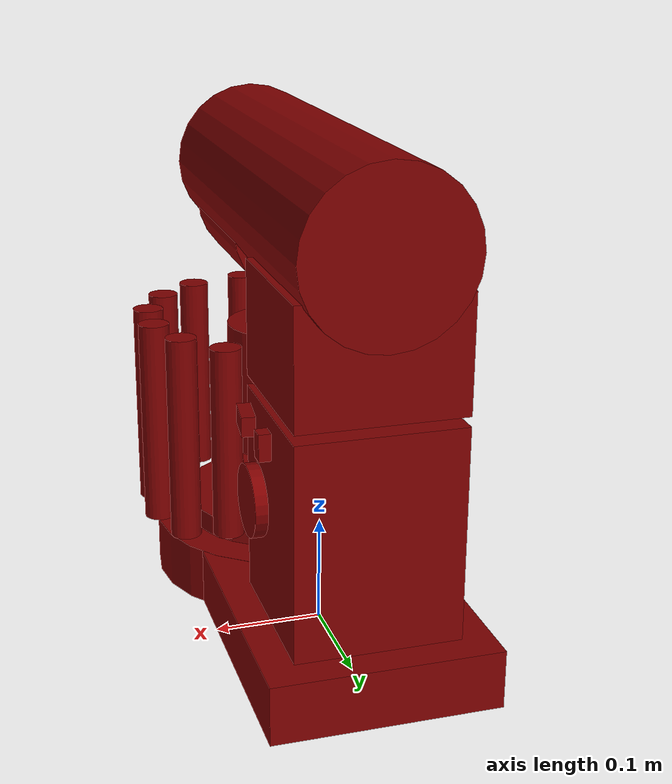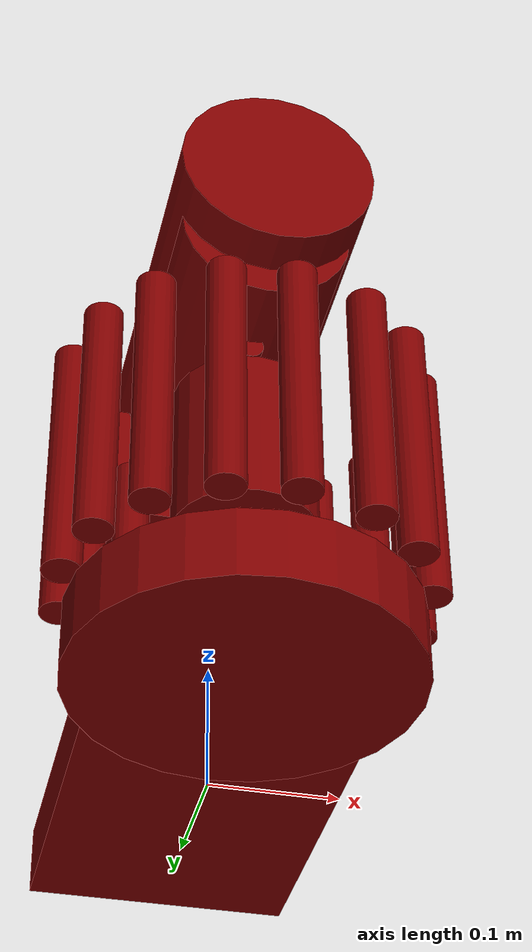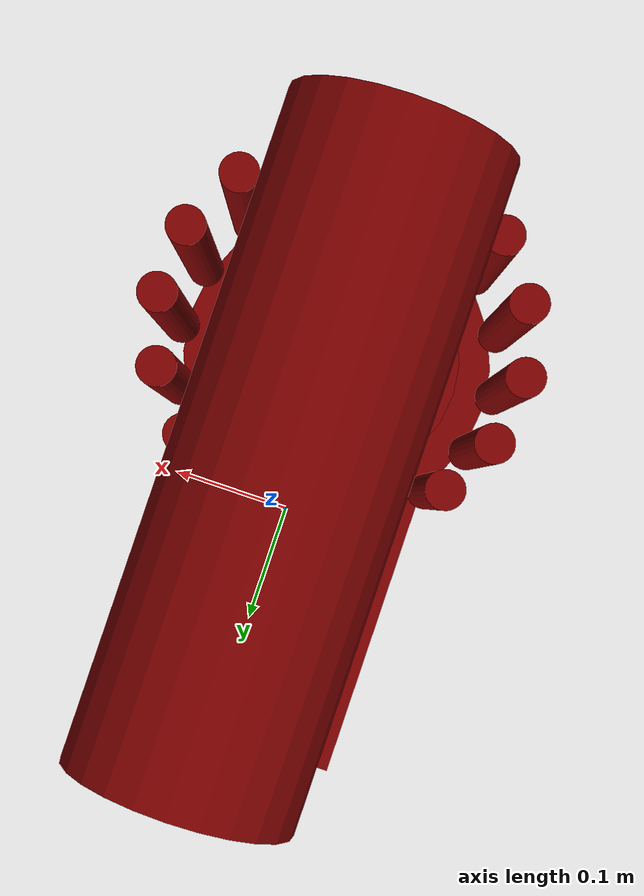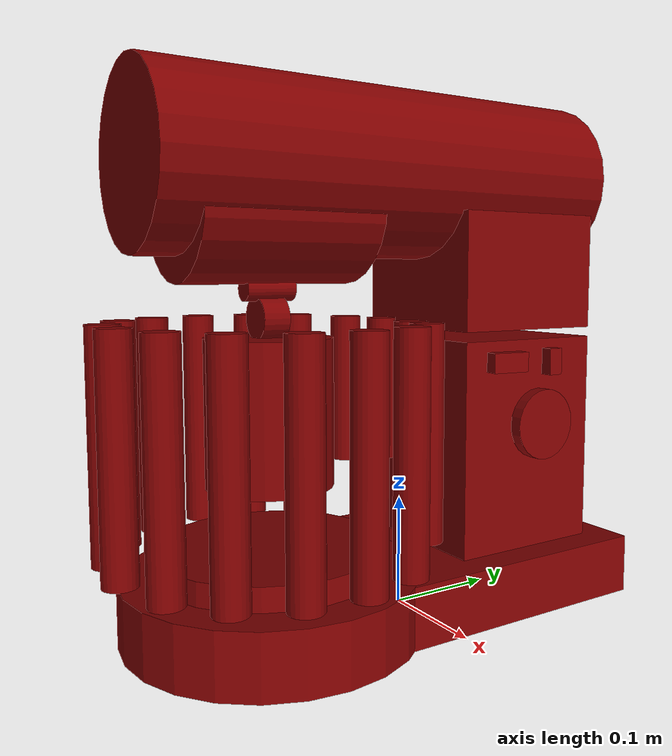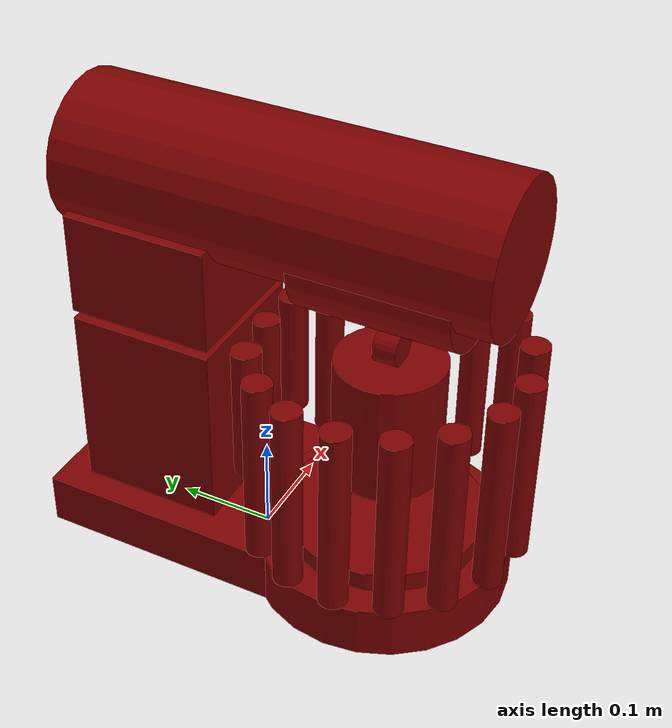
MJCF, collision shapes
<mujoco model="model">
  <compiler angle="radian"/>
  <asset>
    <mesh file="visuals/FoodMixer001_Lid001.obj" name="FoodMixer001_Lid_vis"/>
    <mesh file="visuals/FoodMixer001_Knob001.obj" name="FoodMixer001_Knob001_vis"/>
    <mesh file="visuals/FoodMixer001_Container001.obj" name="FoodMixer001_Container_vis"/>
    <mesh file="visuals/FoodMixer001_Rotate001.obj" name="FoodMixer001_Rotate_vis"/>
    <mesh file="visuals/FoodMixer001_Knob002.obj" name="FoodMixer001_Knob002_vis"/>
    <mesh file="visuals/FoodMixer001_Button001.obj" name="FoodMixer001_Button_vis"/>
    <mesh file="visuals/FoodMixer001_Body001.obj" name="FoodMixer001_Body_vis"/>
    <texture file="visuals/T_FoodMixer001_BC001.png" name="T_FoodMixer001_BC" type="2d"/>
    <material name="material" rgba="1 1 1 1" texture="T_FoodMixer001_BC"/>
  </asset>
  <default>
    <default class="visual">
      <geom conaffinity="0" contype="0" group="1" type="mesh"/>
    </default>
    <default class="collision">
      <geom group="0" rgba="0.5 0 0 0.5"/>
    </default>
    <default class="region">
      <geom group="1" conaffinity="0" contype="0" rgba="0 1 0 0"/>
    </default>
  </default>
  <worldbody>
    <body>
      <body name="object">
        <geom mesh="FoodMixer001_Body_vis" type="mesh" solimp="0.998 0.998 0.001" solref="0.001 1" density="100" friction="0.95 0.3 0.1" class="visual" material="material"/>
        <geom class="collision" type="box" pos="-0.0015425285091623664 0.001505821943283081 0.02924015372991562" size="0.1947782039642334 0.10231997817754745 0.02692364901304245" quat="0.7071067690849304 0.0 -0.0 -0.7071067690849304"/>
        <geom class="collision" type="cylinder" pos="-0.0015425384044647217 -0.13211378455162048 0.02916795015335083" size="0.1292576938867569 0.02709665149450302" quat="0.7071067690849304 0.0 -0.0 -0.7071067690849304"/>
        <geom class="collision" type="box" pos="-0.0015425384044647217 0.09347827732563019 0.15110759437084198" size="0.07416939735412598 0.07416940480470657 0.09849457442760468" quat="0.7071067690849304 0.0 -0.0 -0.7071067690849304"/>
        <body name="FoodMixer001_Button">
          <joint axis="-1 0 0" pos="0.07402005046606064 0.11086869984865189 0.22917325794696808" limited="true" name="FoodMixer001_Button_joint" range="0.0 0.002" type="slide" damping="2" frictionloss="2" armature=".01"/>
          <geom mesh="FoodMixer001_Button_vis" type="mesh" solimp="0.998 0.998 0.001" solref="0.001 1" density="100" friction="0.95 0.3 0.1" class="visual" material="material"/>
          <geom class="collision" type="box" pos="0.08268392086029053 0.11086530983448029 0.22953137755393982" size="0.011952424421906471 0.005380550865083933 0.007075777743011713" quat="0.5000000596046448 -0.5 -0.5 -0.4999999701976776"/>
        </body>
        <body name="FoodMixer001_Container">
          <joint axis="0 0 1" pos="-0.001966622890904546 -0.1334008127450943 0.05936579406261444" limited="true" name="FoodMixer001_Container_joint" range="0.0 0.02" type="slide" damping="2" frictionloss="2" armature=".01"/>
          <geom mesh="FoodMixer001_Container_vis" type="mesh" solimp="0.998 0.998 0.001" solref="0.001 1" density="100" friction="0.95 0.3 0.1" class="visual" material="material"/>
          <geom class="collision" type="cylinder" pos="-0.001966625452041626 -0.1334008127450943 0.0681685134768486" size="0.10042183101177216 0.010085941292345524" quat="0.7071067690849304 0.0 -0.0 -0.7071067690849304"/>
          <geom class="collision" type="cylinder" pos="0.06330908834934235 -0.24866095185279846 0.1696876585483551" size="0.014615054242312908 0.09909340739250183" quat="0.9230777621269226 0.0 -0.0 -0.38461342453956604"/>
          <geom class="collision" type="cylinder" pos="0.1019730418920517 -0.2155127227306366 0.1696876585483551" size="0.014615053310990334 0.09909340739250183" quat="0.9797985553741455 0.0 -0.0 -0.19998711347579956"/>
          <geom class="collision" type="cylinder" pos="0.12576672434806824 -0.1684723198413849 0.1696876585483551" size="0.014615049585700035 0.09909340739250183" quat="0.999999463558197 0.0 -0.0 -0.0010215041693300009"/>
          <geom class="collision" type="cylinder" pos="0.12955842912197113 -0.1176852136850357 0.1696876585483551" size="0.014615051448345184 0.09909340739250183" quat="0.9815438389778137 0.0 0.0 0.19123737514019012"/>
          <geom class="collision" type="cylinder" pos="0.11336428672075272 -0.06825023144483566 0.1696876585483551" size="0.014615047723054886 0.09909340739250183" quat="0.9248837232589722 0.0 0.0 0.38025006651878357"/>
          <geom class="collision" type="cylinder" pos="0.08025802671909332 -0.029550328850746155 0.17685510218143463" size="0.014615051448345184 0.09168741106987" quat="0.8345335125923157 0.0 0.0 0.550957202911377"/>
          <geom class="collision" type="cylinder" pos="0.03404930606484413 -0.013198982924222946 0.20268628001213074" size="0.014569642953574657 0.06479465961456299" quat="0.7104380130767822 0.0 0.0 0.7037597894668579"/>
          <geom class="collision" type="cylinder" pos="-0.015409907326102257 -0.01053121592849493 0.20322397351264954" size="0.013327748514711857 0.06522424519062042" quat="-0.5618961453437805 -0.0 0.0 -0.8272077441215515"/>
          <geom class="collision" type="cylinder" pos="-0.066881462931633 -0.017937082797288895 0.19791331887245178" size="0.014615051448345184 0.069928377866745" quat="-0.38605669140815735 -0.0 0.0 -0.9224750399589539"/>
          <geom class="collision" type="cylinder" pos="-0.10564891993999481 -0.05096421763300896 0.1696876585483551" size="0.014615059830248356 0.09909340739250183" quat="-0.2015194147825241 -0.0 0.0 -0.979484498500824"/>
          <geom class="collision" type="cylinder" pos="-0.12804153561592102 -0.09276925027370453 0.1696876585483551" size="0.014615055173635483 0.09909340739250183" quat="-0.0229226965457201 -0.0 0.0 -0.9997372627258301"/>
          <geom class="collision" type="cylinder" pos="-0.13405370712280273 -0.1433415412902832 0.1696876585483551" size="0.014615051448345184 0.09909340739250183" quat="0.16969415545463562 0.0 -0.0 -0.9854967594146729"/>
          <geom class="collision" type="cylinder" pos="-0.12009742856025696 -0.1933251917362213 0.1696876585483551" size="0.014615051448345184 0.09909340739250183" quat="0.3594557046890259 0.0 -0.0 -0.9331621527671814"/>
          <geom class="collision" type="cylinder" pos="-0.08875608444213867 -0.23346781730651855 0.1696876585483551" size="0.014615051448345184 0.09909340739250183" quat="0.5321423411369324 0.0 -0.0 -0.8466548919677734"/>
          <geom class="collision" type="cylinder" pos="-0.04285570979118347 -0.25939249992370605 0.1696876585483551" size="0.014615049585700035 0.09909340739250183" quat="0.6899731755256653 0.0 -0.0 -0.7238349318504333"/>
          <geom class="collision" type="cylinder" pos="0.007704257965087891 -0.26550793647766113 0.1696876585483551" size="0.014615051448345184 0.09909340739250183" quat="0.8162537813186646 0.0 -0.0 -0.5776934623718262"/>
        </body>
        <body name="FoodMixer001_Knob001">
          <joint axis="-1 0 0" pos="0.07845500856637955 0.0947626605629921 0.1750715970993042" limited="true" name="FoodMixer001_Knob001_joint" range="0.0 3.3161255787892263" type="hinge" damping="2" frictionloss="2" armature=".01"/>
          <geom mesh="FoodMixer001_Knob001_vis" type="mesh" solimp="0.998 0.998 0.001" solref="0.001 1" density="100" friction="0.95 0.3 0.1" class="visual" material="material"/>
          <geom class="collision" type="cylinder" pos="0.0876527726650238 0.09467422217130661 0.17427559196949005" size="0.03172425180673599 0.005505914334207773" quat="0.4999999701976776 0.5 -0.5 -0.5"/>
        </body>
        <body name="FoodMixer001_Knob002">
          <joint axis="-1 0 0" pos="0.07434427738189697 0.05688606575131416 0.23159411549568176" limited="true" name="FoodMixer001_Knob002_joint" range="0.0 1.5707963267948966" type="hinge" damping="2" frictionloss="2" armature=".01"/>
          <geom mesh="FoodMixer001_Knob002_vis" type="mesh" solimp="0.998 0.998 0.001" solref="0.001 1" density="100" friction="0.95 0.3 0.1" class="visual" material="material"/>
          <geom class="collision" type="box" pos="0.08330634236335754 0.05701729282736778 0.23157043755054474" size="0.017637543380260468 0.006127911154180765 0.008721379563212395" quat="0.6639736890792847 0.0 -0.0 -0.7477559447288513"/>
        </body>
        <body name="FoodMixer001_Lid">
          <joint axis="-1 0 0" pos="8.760163261456455e-09 0.166860893368721 0.25023186206817627" limited="true" name="FoodMixer001_Lid_joint" range="0.0 1.5707963267948966" type="hinge" damping="2" frictionloss="2" armature=".01"/>
          <geom mesh="FoodMixer001_Lid_vis" type="mesh" solimp="0.998 0.998 0.001" solref="0.001 1" density="100" friction="0.95 0.3 0.1" class="visual" material="material"/>
          <geom class="collision" type="cylinder" pos="-0.0015425533056259155 -0.13560819625854492 0.3655071556568146" size="0.06543299555778503 0.07799912989139557" quat="0.5000000596046448 -0.5 -0.5 -0.4999999701976776"/>
          <geom class="collision" type="cylinder" pos="-0.0015425533056259155 -0.13365599513053894 0.296347051858902" size="0.010491198860108852 0.021897299215197563" quat="0.5000000596046448 -0.5 -0.5 -0.4999999701976776"/>
          <geom class="collision" type="box" pos="-0.0015425384044647217 0.09347827732563019 0.3105940520763397" size="0.07416939735412598 0.07416940480470657 0.0522402860224247" quat="0.7071067690849304 0.0 -0.0 -0.7071067690849304"/>
          <geom class="collision" type="cylinder" pos="8.812634677118677e-17 -0.03382750228047371 0.39688578248023987" size="0.07483591139316559 0.21571049094200134" quat="0.7071067690849304 -0.7071067690849304 -1.5700926965105832e-16 -3.431546515433212e-24"/>
          <body name="FoodMixer001_Rotate">
            <joint axis="0 0 1" pos="-0.001972653903067112 -0.1333957314491272 0.2857680916786194" limited="false" name="FoodMixer001_Rotate_joint" range="0 360" type="hinge" damping="2" frictionloss="2" armature=".01"/>
            <geom mesh="FoodMixer001_Rotate_vis" type="mesh" solimp="0.998 0.998 0.001" solref="0.001 1" density="100" friction="0.95 0.3 0.1" class="visual" material="material"/>
            <geom class="collision" type="cylinder" pos="-0.0015425533056259155 -0.13352078199386597 0.2718105614185333" size="0.01818745955824852 0.011703470721840858" quat="0.5000000596046448 -0.5 -0.5 -0.4999999701976776"/>
            <geom class="collision" type="cylinder" pos="-0.0015425533056259155 -0.13352075219154358 0.19292248785495758" size="0.05467915162444115 0.06281024217605591" quat="1.0 0.0 0.0 0.0"/>
          </body>
        </body>
        <geom class="region" name="reg_main_body" type="box" pos="-0.0019708401523530483 -0.03944823890924454 0.23758914321660995" size="0.14182817935943604 0.23577632009983063 0.23758914321660995"/>
      </body>
    </body>
  </worldbody>
  <actuator>
    <motor name="FoodMixer001_Button_joint_actuator" joint="FoodMixer001_Button_joint" gear="10"/>
    <motor name="FoodMixer001_Container_joint_actuator" joint="FoodMixer001_Container_joint" gear="10"/>
    <motor name="FoodMixer001_Knob001_joint_actuator" joint="FoodMixer001_Knob001_joint" gear="10"/>
    <motor name="FoodMixer001_Knob002_joint_actuator" joint="FoodMixer001_Knob002_joint" gear="10"/>
    <motor name="FoodMixer001_Lid_joint_actuator" joint="FoodMixer001_Lid_joint" gear="10"/>
    <motor name="FoodMixer001_Rotate_joint_actuator" joint="FoodMixer001_Rotate_joint" gear="10"/>
  </actuator>
</mujoco>
